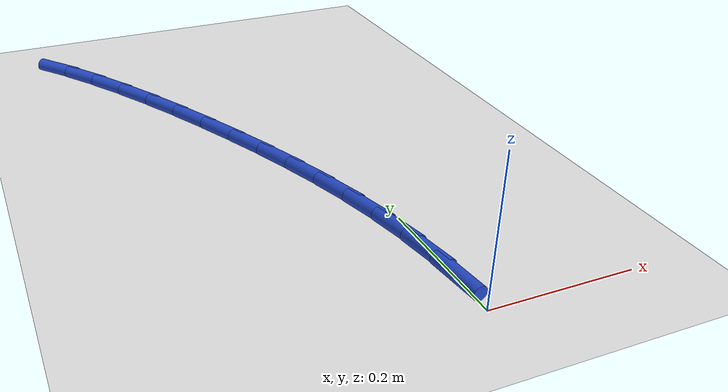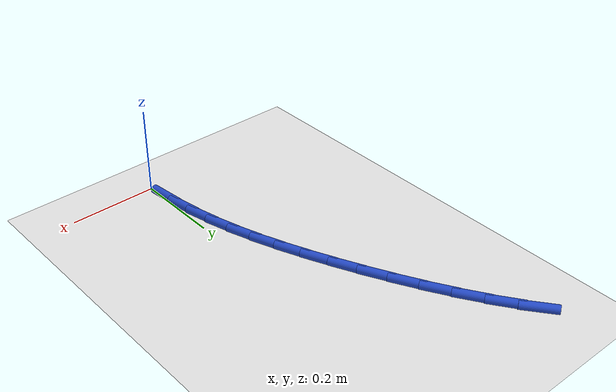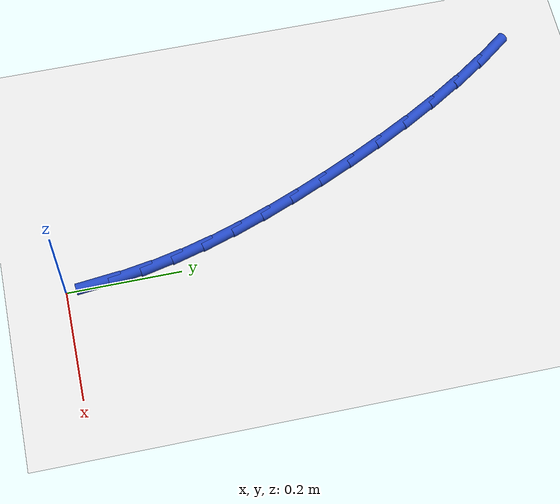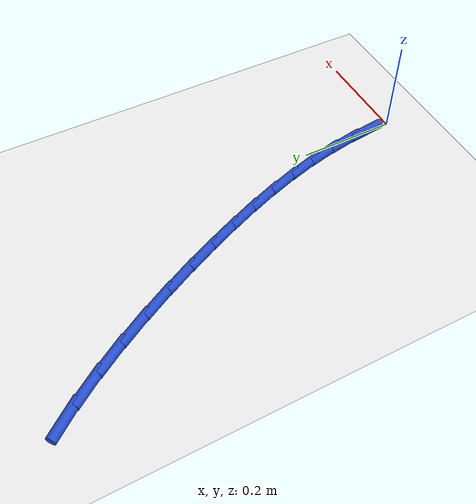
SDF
<sdf version="1.6">
 <world name="default">
  <model name="ground_plane">
   <static>1</static>
   <link name="link">
    <collision name="collision">
     <geometry><plane><normal>0 0 1</normal><size>100 100</size></plane></geometry>
     <surface><friction><ode><mu>100</mu><mu2>50</mu2></ode></friction></surface>
    </collision>
    <visual name="visual">
     <cast_shadows>0</cast_shadows>
     <geometry><plane><normal>0 0 1</normal><size>100 100</size></plane></geometry>
     <material>
      <script><uri>file://media/materials/scripts/gazebo.material</uri><name>Gazebo/WhiteGlow</name></script>
     </material>
    </visual>
   </link>
  </model>
  <model name="line">
   <link name="link_1">
    <pose>-0.0027270269293233206 0.056985952894324426 0.01 0 1.57 -1.4588446997297897</pose>
    <collision name="collision">
     <geometry><cylinder><radius>0.01</radius><length>0.08</length></cylinder></geometry>
    </collision>
    <visual name="visual">
     <material>
      <script><name>Gazebo/Blue</name><uri>file://media/materials/scripts/gazebo.material</uri></script>
     </material>
     <geometry><cylinder><radius>0.01</radius><length>0.08</length></cylinder></geometry>
    </visual>
   </link>
   <link name="link_2">
    <pose>-0.009048751967802623 0.11321820872308494 0.01 0 1.57 -1.398440738708503</pose>
    <collision name="collision">
     <geometry><cylinder><radius>0.01</radius><length>0.08</length></cylinder></geometry>
    </collision>
    <visual name="visual">
     <material>
      <script><name>Gazebo/Blue</name><uri>file://media/materials/scripts/gazebo.material</uri></script>
     </material>
     <geometry><cylinder><radius>0.01</radius><length>0.08</length></cylinder></geometry>
    </visual>
   </link>
   <link name="link_3">
    <pose>-0.01874156318919814 0.16889752287230472 0.01 0 1.57 -1.342753931508216</pose>
    <collision name="collision">
     <geometry><cylinder><radius>0.01</radius><length>0.08</length></cylinder></geometry>
    </collision>
    <visual name="visual">
     <material>
      <script><name>Gazebo/Blue</name><uri>file://media/materials/scripts/gazebo.material</uri></script>
     </material>
     <geometry><cylinder><radius>0.01</radius><length>0.08</length></cylinder></geometry>
    </visual>
   </link>
   <link name="link_4">
    <pose>-0.031581848667270145 0.22422465072800674 0.01 0 1.57 -1.2925023151642674</pose>
    <collision name="collision">
     <geometry><cylinder><radius>0.01</radius><length>0.08</length></cylinder></geometry>
    </collision>
    <visual name="visual">
     <material>
      <script><name>Gazebo/Blue</name><uri>file://media/materials/scripts/gazebo.material</uri></script>
     </material>
     <geometry><cylinder><radius>0.01</radius><length>0.08</length></cylinder></geometry>
    </visual>
   </link>
   <link name="link_5">
    <pose>-0.047345996475778904 0.2794003476762139 0.01 0 1.57 -1.2481324800363265</pose>
    <collision name="collision">
     <geometry><cylinder><radius>0.01</radius><length>0.08</length></cylinder></geometry>
    </collision>
    <visual name="visual">
     <material>
      <script><name>Gazebo/Blue</name><uri>file://media/materials/scripts/gazebo.material</uri></script>
     </material>
     <geometry><cylinder><radius>0.01</radius><length>0.08</length></cylinder></geometry>
    </visual>
   </link>
   <link name="link_6">
    <pose>-0.06581039468848478 0.3346253691029493 0.01 0 1.57 -1.2098485230248275</pose>
    <collision name="collision">
     <geometry><cylinder><radius>0.01</radius><length>0.08</length></cylinder></geometry>
    </collision>
    <visual name="visual">
     <material>
      <script><name>Gazebo/Blue</name><uri>file://media/materials/scripts/gazebo.material</uri></script>
     </material>
     <geometry><cylinder><radius>0.01</radius><length>0.08</length></cylinder></geometry>
    </visual>
   </link>
   <link name="link_7">
    <pose>-0.08675143137914797 0.390100470394236 0.01 0 1.57 -1.177658050575307</pose>
    <collision name="collision">
     <geometry><cylinder><radius>0.01</radius><length>0.08</length></cylinder></geometry>
    </collision>
    <visual name="visual">
     <material>
      <script><name>Gazebo/Blue</name><uri>file://media/materials/scripts/gazebo.material</uri></script>
     </material>
     <geometry><cylinder><radius>0.01</radius><length>0.08</length></cylinder></geometry>
    </visual>
   </link>
   <link name="link_8">
    <pose>-0.10994549462152879 0.4460264069360968 0.01 0 1.57 -1.1514225362945494</pose>
    <collision name="collision">
     <geometry><cylinder><radius>0.01</radius><length>0.08</length></cylinder></geometry>
    </collision>
    <visual name="visual">
     <material>
      <script><name>Gazebo/Blue</name><uri>file://media/materials/scripts/gazebo.material</uri></script>
     </material>
     <geometry><cylinder><radius>0.01</radius><length>0.08</length></cylinder></geometry>
    </visual>
   </link>
   <link name="link_9">
    <pose>-0.13516897613155643 0.5026039211565312 0.01 0 1.57 -1.1292402034982782</pose>
    <collision name="collision">
     <geometry><cylinder><radius>0.01</radius><length>0.08</length></cylinder></geometry>
    </collision>
    <visual name="visual">
     <material>
      <script><name>Gazebo/Blue</name><uri>file://media/materials/scripts/gazebo.material</uri></script>
     </material>
     <geometry><cylinder><radius>0.01</radius><length>0.08</length></cylinder></geometry>
    </visual>
   </link>
   <link name="link_10">
    <pose>-0.1622418262638299 0.5598787835734659 0.01 0 1.57 -1.104987739435299</pose>
    <collision name="collision">
     <geometry><cylinder><radius>0.01</radius><length>0.08</length></cylinder></geometry>
    </collision>
    <visual name="visual">
     <material>
      <script><name>Gazebo/Blue</name><uri>file://media/materials/scripts/gazebo.material</uri></script>
     </material>
     <geometry><cylinder><radius>0.01</radius><length>0.08</length></cylinder></geometry>
    </visual>
   </link>
   <link name="link_11">
    <pose>-0.19113594421118837 0.6173561646673946 0.01 0 1.57 -1.0769653855739312</pose>
    <collision name="collision">
     <geometry><cylinder><radius>0.01</radius><length>0.08</length></cylinder></geometry>
    </collision>
    <visual name="visual">
     <material>
      <script><name>Gazebo/Blue</name><uri>file://media/materials/scripts/gazebo.material</uri></script>
     </material>
     <geometry><cylinder><radius>0.01</radius><length>0.08</length></cylinder></geometry>
    </visual>
   </link>
   <link name="link_12">
    <pose>-0.22185634183816963 0.6744234274267183 0.01 0 1.57 -1.0446002518976862</pose>
    <collision name="collision">
     <geometry><cylinder><radius>0.01</radius><length>0.08</length></cylinder></geometry>
    </collision>
    <visual name="visual">
     <material>
      <script><name>Gazebo/Blue</name><uri>file://media/materials/scripts/gazebo.material</uri></script>
     </material>
     <geometry><cylinder><radius>0.01</radius><length>0.08</length></cylinder></geometry>
    </visual>
   </link>
   <link name="link_13">
    <pose>-0.2544080310093111 0.7304679348398373 0.01 0 1.57 -1.007160327309293</pose>
    <collision name="collision">
     <geometry><cylinder><radius>0.01</radius><length>0.08</length></cylinder></geometry>
    </collision>
    <visual name="visual">
     <material>
      <script><name>Gazebo/Blue</name><uri>file://media/materials/scripts/gazebo.material</uri></script>
     </material>
     <geometry><cylinder><radius>0.01</radius><length>0.08</length></cylinder></geometry>
    </visual>
   </link>
   <link name="link_14">
    <pose>-0.28879602358915046 0.7848770498951518 0.01 0 1.57 -0.9637267737742142</pose>
    <collision name="collision">
     <geometry><cylinder><radius>0.01</radius><length>0.08</length></cylinder></geometry>
    </collision>
    <visual name="visual">
     <material>
      <script><name>Gazebo/Blue</name><uri>file://media/materials/scripts/gazebo.material</uri></script>
     </material>
     <geometry><cylinder><radius>0.01</radius><length>0.08</length></cylinder></geometry>
    </visual>
   </link>
   <link name="link_15">
    <pose>-0.3250253314422253 0.8370381355810629 0.01 0 1.57 -0.9131636022348402</pose>
    <collision name="collision">
     <geometry><cylinder><radius>0.01</radius><length>0.08</length></cylinder></geometry>
    </collision>
    <visual name="visual">
     <material>
      <script><name>Gazebo/Blue</name><uri>file://media/materials/scripts/gazebo.material</uri></script>
     </material>
     <geometry><cylinder><radius>0.01</radius><length>0.08</length></cylinder></geometry>
    </visual>
   </link>
  </model>
 </world>
</sdf>
